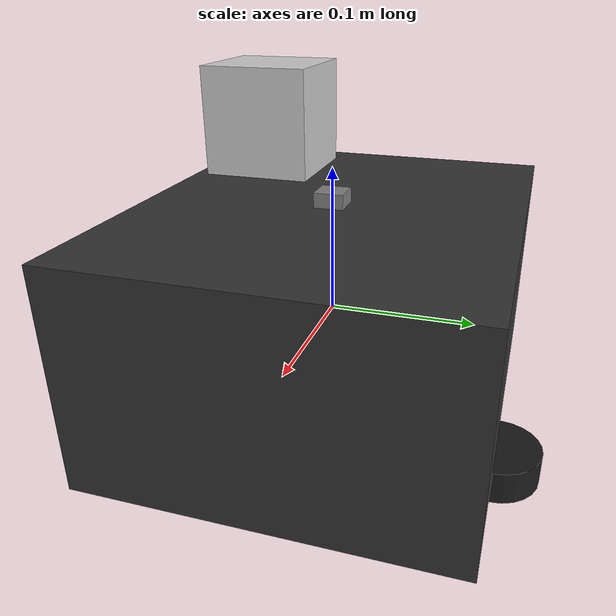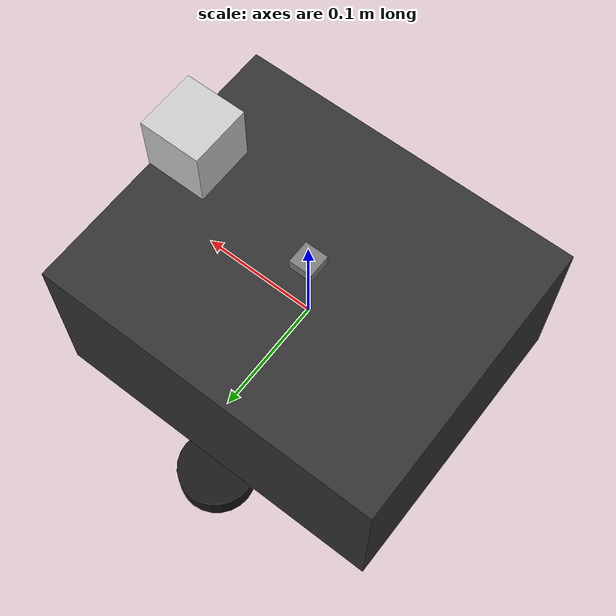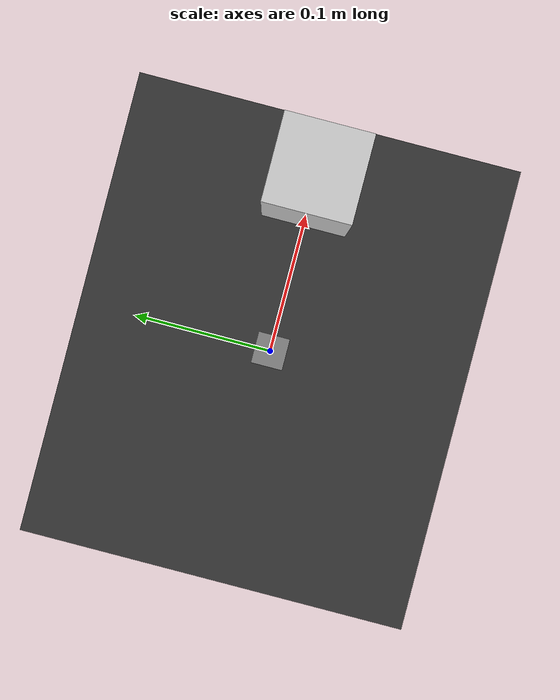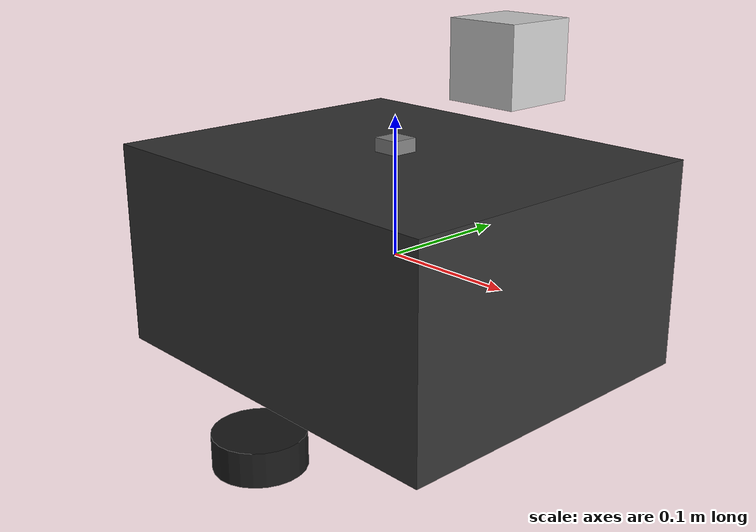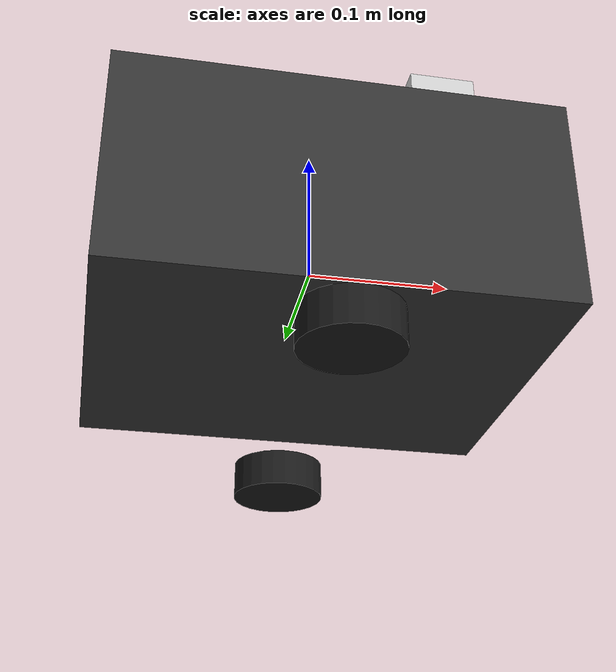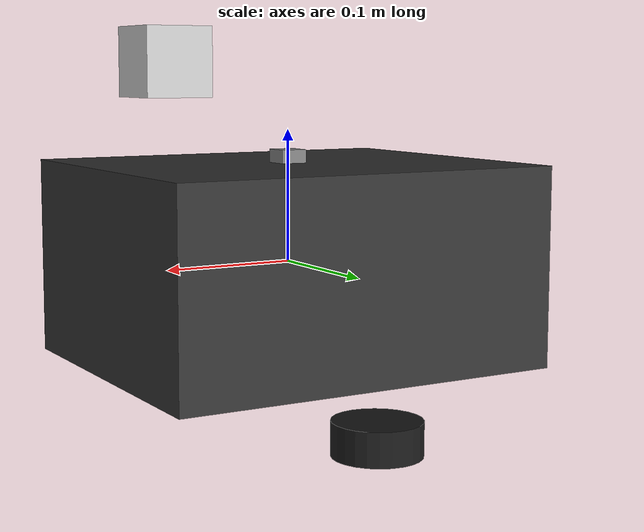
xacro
<?xml version="1.0"?>
<robot xmlns:xacro="http://www.ros.org/wiki/xacro" name="slam_bot">

  <!-- Robot parameters -->
  <xacro:property name="base_width" value="0.25"/>
  <xacro:property name="base_length" value="0.30"/>
  <xacro:property name="base_height" value="0.15"/>
  <xacro:property name="wheel_radius" value="0.0325"/>
  <xacro:property name="wheel_width" value="0.025"/>
  <xacro:property name="wheel_separation" value="0.25"/>
  <xacro:property name="camera_height" value="0.15"/>
  <xacro:property name="camera_offset_x" value="0.1"/>

  <!-- Base link -->
  <link name="base_link">
    <visual>
      <geometry>
        <box size="${base_length} ${base_width} ${base_height}"/>
      </geometry>
      <material name="base_material">
        <color rgba="0.2 0.2 0.2 1.0"/>
      </material>
    </visual>
    <collision>
      <geometry>
        <box size="${base_length} ${base_width} ${base_height}"/>
      </geometry>
    </collision>
    <inertial>
      <mass value="2.0"/>
      <inertia ixx="0.1" ixy="0.0" ixz="0.0" iyy="0.1" iyz="0.0" izz="0.1"/>
    </inertial>
  </link>

  <!-- Left wheel -->
  <link name="left_wheel">
    <visual>
      <geometry>
        <cylinder radius="${wheel_radius}" length="${wheel_width}"/>
      </geometry>
      <material name="wheel_material">
        <color rgba="0.1 0.1 0.1 1.0"/>
      </material>
    </visual>
    <collision>
      <geometry>
        <cylinder radius="${wheel_radius}" length="${wheel_width}"/>
      </geometry>
    </collision>
    <inertial>
      <mass value="0.1"/>
      <inertia ixx="0.001" ixy="0.0" ixz="0.0" iyy="0.001" iyz="0.0" izz="0.001"/>
    </inertial>
  </link>

  <!-- Right wheel -->
  <link name="right_wheel">
    <visual>
      <geometry>
        <cylinder radius="${wheel_radius}" length="${wheel_width}"/>
      </geometry>
      <material name="wheel_material"/>
    </visual>
    <collision>
      <geometry>
        <cylinder radius="${wheel_radius}" length="${wheel_width}"/>
      </geometry>
    </collision>
    <inertial>
      <mass value="0.1"/>
      <inertia ixx="0.001" ixy="0.0" ixz="0.0" iyy="0.001" iyz="0.0" izz="0.001"/>
    </inertial>
  </link>

  <!-- Camera link -->
  <link name="camera_link">
    <visual>
      <geometry>
        <box size="0.05 0.05 0.05"/>
      </geometry>
      <material name="camera_material">
        <color rgba="0.8 0.8 0.8 1.0"/>
      </material>
    </visual>
    <collision>
      <geometry>
        <box size="0.05 0.05 0.05"/>
      </geometry>
    </collision>
    <inertial>
      <mass value="0.1"/>
      <inertia ixx="0.001" ixy="0.0" ixz="0.0" iyy="0.001" iyz="0.0" izz="0.001"/>
    </inertial>
  </link>

  <!-- Left wheel joint -->
  <joint name="left_wheel_joint" type="continuous">
    <parent link="base_link"/>
    <child link="left_wheel"/>
    <origin xyz="0 ${wheel_separation/2} -${base_height/2 + wheel_radius}" rpy="0 0 0"/>
    <axis xyz="0 0 1"/>
  </joint>

  <!-- Right wheel joint -->
  <joint name="right_wheel_joint" type="continuous">
    <parent link="base_link"/>
    <child link="right_wheel"/>
    <origin xyz="0 -${wheel_separation/2} -${base_height/2 + wheel_radius}" rpy="0 0 0"/>
    <axis xyz="0 0 1"/>
  </joint>

  <!-- Camera joint -->
  <joint name="camera_joint" type="fixed">
    <parent link="base_link"/>
    <child link="camera_link"/>
    <origin xyz="${camera_offset_x} 0 ${camera_height}" rpy="0 0 0"/>
  </joint>

  <!-- RealSense camera link -->
  <link name="camera_color_frame"/>
  <link name="camera_depth_frame"/>
  <link name="camera_color_optical_frame"/>
  <link name="camera_depth_optical_frame"/>

  <!-- RealSense camera joints -->
  <joint name="camera_color_joint" type="fixed">
    <parent link="camera_link"/>
    <child link="camera_color_frame"/>
    <origin xyz="0 0 0" rpy="0 0 0"/>
  </joint>

  <joint name="camera_depth_joint" type="fixed">
    <parent link="camera_link"/>
    <child link="camera_depth_frame"/>
    <origin xyz="0 0 0" rpy="0 0 0"/>
  </joint>

  <joint name="camera_color_optical_joint" type="fixed">
    <parent link="camera_color_frame"/>
    <child link="camera_color_optical_frame"/>
    <origin xyz="0 0 0" rpy="-1.5708 0 -1.5708"/>
  </joint>

  <joint name="camera_depth_optical_joint" type="fixed">
    <parent link="camera_depth_frame"/>
    <child link="camera_depth_optical_frame"/>
    <origin xyz="0 0 0" rpy="-1.5708 0 -1.5708"/>
  </joint>

  <!-- IMU link -->
  <link name="imu_link">
    <visual>
      <geometry>
        <box size="0.02 0.02 0.02"/>
      </geometry>
      <material name="imu_material">
        <color rgba="0.5 0.5 0.5 1.0"/>
      </material>
    </visual>
    <collision>
      <geometry>
        <box size="0.02 0.02 0.02"/>
      </geometry>
    </collision>
    <inertial>
      <mass value="0.01"/>
      <inertia ixx="0.0001" ixy="0.0" ixz="0.0" iyy="0.0001" iyz="0.0" izz="0.0001"/>
    </inertial>
  </link>

  <!-- IMU joint -->
  <joint name="imu_joint" type="fixed">
    <parent link="base_link"/>
    <child link="imu_link"/>
    <origin xyz="0 0 ${base_height/2}" rpy="0 0 0"/>
  </joint>

  <!-- Gazebo plugins -->
  <gazebo>
    <plugin name="gazebo_ros_control" filename="libgazebo_ros_control.so">
      <robotNamespace>/</robotNamespace>
    </plugin>
  </gazebo>

  <!-- Wheel gazebo properties -->
  <gazebo reference="left_wheel">
    <material>Gazebo/Black</material>
    <mu1>0.8</mu1>
    <mu2>0.8</mu2>
  </gazebo>

  <gazebo reference="right_wheel">
    <material>Gazebo/Black</material>
    <mu1>0.8</mu1>
    <mu2>0.8</mu2>
  </gazebo>

  <!-- Base gazebo properties -->
  <gazebo reference="base_link">
    <material>Gazebo/DarkGrey</material>
  </gazebo>

  <!-- Camera gazebo properties -->
  <gazebo reference="camera_link">
    <material>Gazebo/White</material>
  </gazebo>

</robot>
